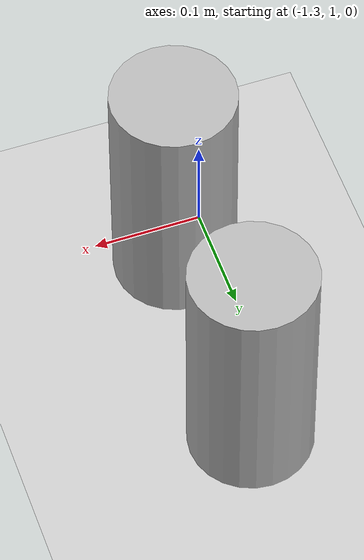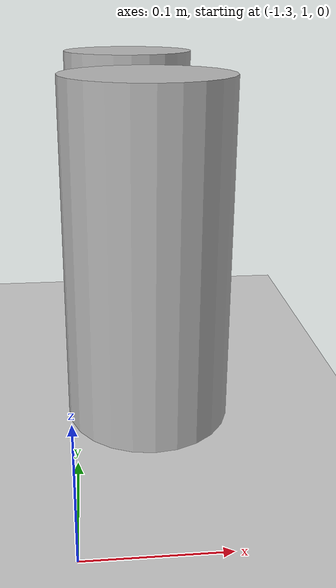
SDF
<sdf version="1.7">
 <world name="default">
  <model name="ground_plane">
   <static>1</static>
   <link name="link">
    <collision name="collision">
     <geometry><plane><normal>0 0 1</normal><size>100 100</size></plane></geometry>
     <surface>
      <contact><collide_bitmask>65535</collide_bitmask></contact>
      <friction><ode><mu>100</mu><mu2>50</mu2></ode></friction>
     </surface>
    </collision>
    <visual name="visual">
     <cast_shadows>0</cast_shadows>
     <geometry><plane><normal>0 0 1</normal><size>100 100</size></plane></geometry>
     <material>
      <script><uri>file://media/materials/scripts/gazebo.material</uri><name>Gazebo/Grey</name></script>
     </material>
    </visual>
   </link>
  </model>
  <model name="Beer_0">
   <link name="link">
    <pose>-0 0 0.115 0 -0 0</pose>
    <inertial>
     <mass>0.39</mass>
     <inertia><ixx>0.00058</ixx><ixy>0</ixy><ixz>0</ixz><iyy>0.00058</iyy><iyz>0</iyz><izz>0.00019</izz></inertia>
    </inertial>
    <visual name="visual">
     <geometry><cylinder><radius>0.055</radius><length>0.23</length></cylinder></geometry>
     <material>
      <script>
       <uri>model://beer/materials/scripts</uri>
       <uri>model://beer/materials/textures</uri>
       <name>Beer/Diffuse</name>
      </script>
      <shader type="pixel"/>
     </material>
    </visual>
    <collision name="collision">
     <geometry><cylinder><radius>0.055</radius><length>0.23</length></cylinder></geometry>
     <surface>
      <friction>
       <ode><mu>1</mu><mu2>1</mu2><fdir1>0 0 0</fdir1><slip1>0</slip1><slip2>0</slip2></ode>
       <torsional>
        <coefficient>1</coefficient>
        <patch_radius>0</patch_radius>
        <surface_radius>0</surface_radius>
        <use_patch_radius>1</use_patch_radius>
        <ode><slip>0</slip></ode>
       </torsional>
      </friction>
      <bounce><restitution_coefficient>0</restitution_coefficient><threshold>1e+06</threshold></bounce>
      <contact>
       <collide_without_contact>0</collide_without_contact>
       <collide_without_contact_bitmask>1</collide_without_contact_bitmask>
       <collide_bitmask>1</collide_bitmask>
       <ode>
        <soft_cfm>0</soft_cfm>
        <soft_erp>0.2</soft_erp>
        <kp>1e+13</kp>
        <kd>1</kd>
        <max_vel>0.01</max_vel>
        <min_depth>0</min_depth>
       </ode>
       <bullet>
        <split_impulse>1</split_impulse>
        <split_impulse_penetration_threshold>-0.01</split_impulse_penetration_threshold>
        <soft_cfm>0</soft_cfm>
        <soft_erp>0.2</soft_erp>
        <kp>1e+13</kp>
        <kd>1</kd>
       </bullet>
      </contact>
     </surface>
    </collision>
   </link>
   <static>0</static>
   <pose>-1.24913 1.07994 0.060002 9e-06 3e-05 0.005613</pose>
  </model>
  <model name="Beer_2">
   <link name="link">
    <pose>-0 0 0.115 0 -0 0</pose>
    <inertial>
     <mass>0.39</mass>
     <inertia><ixx>0.00058</ixx><ixy>0</ixy><ixz>0</ixz><iyy>0.00058</iyy><iyz>0</iyz><izz>0.00019</izz></inertia>
    </inertial>
    <visual name="visual">
     <geometry><cylinder><radius>0.055</radius><length>0.23</length></cylinder></geometry>
     <material>
      <script>
       <uri>model://beer/materials/scripts</uri>
       <uri>model://beer/materials/textures</uri>
       <name>Beer/Diffuse</name>
      </script>
      <shader type="pixel"/>
     </material>
    </visual>
    <collision name="collision">
     <geometry><cylinder><radius>0.055</radius><length>0.23</length></cylinder></geometry>
     <surface>
      <friction>
       <ode><mu>1</mu><mu2>1</mu2><fdir1>0 0 0</fdir1><slip1>0</slip1><slip2>0</slip2></ode>
       <torsional>
        <coefficient>1</coefficient>
        <patch_radius>0</patch_radius>
        <surface_radius>0</surface_radius>
        <use_patch_radius>1</use_patch_radius>
        <ode><slip>0</slip></ode>
       </torsional>
      </friction>
      <bounce><restitution_coefficient>0</restitution_coefficient><threshold>1e+06</threshold></bounce>
      <contact>
       <collide_without_contact>0</collide_without_contact>
       <collide_without_contact_bitmask>1</collide_without_contact_bitmask>
       <collide_bitmask>1</collide_bitmask>
       <ode>
        <soft_cfm>0</soft_cfm>
        <soft_erp>0.2</soft_erp>
        <kp>1e+13</kp>
        <kd>1</kd>
        <max_vel>0.01</max_vel>
        <min_depth>0</min_depth>
       </ode>
       <bullet>
        <split_impulse>1</split_impulse>
        <split_impulse_penetration_threshold>-0.01</split_impulse_penetration_threshold>
        <soft_cfm>0</soft_cfm>
        <soft_erp>0.2</soft_erp>
        <kp>1e+13</kp>
        <kd>1</kd>
       </bullet>
      </contact>
     </surface>
    </collision>
   </link>
   <static>0</static>
   <pose>-1.24915 1.27737 0.060003 4.8e-05 1e-06 0.004488</pose>
  </model>
 </world>
</sdf>
